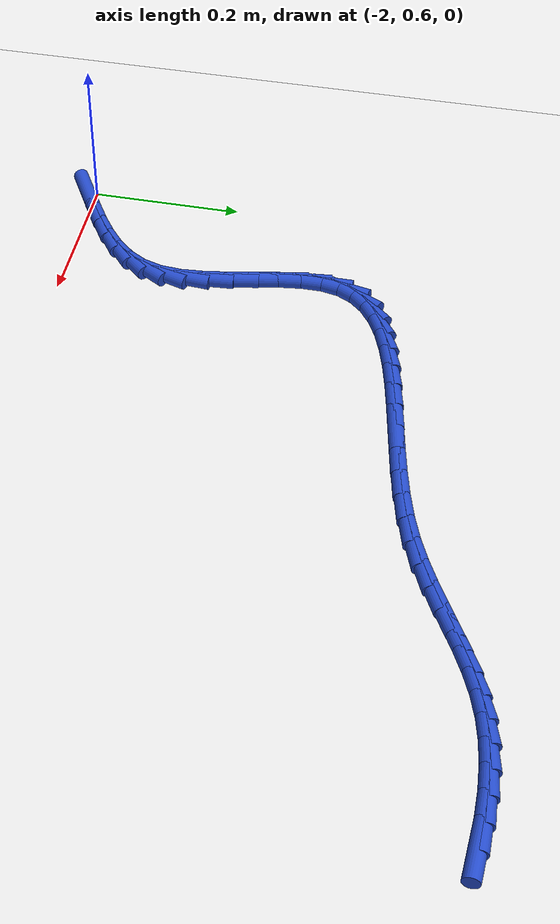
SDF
<sdf version="1.6">
 <world name="default">
  <model name="ground_plane">
   <static>1</static>
   <link name="link">
    <collision name="collision">
     <geometry><plane><normal>0 0 1</normal><size>100 100</size></plane></geometry>
     <surface><friction><ode><mu>100</mu><mu2>50</mu2></ode></friction></surface>
    </collision>
    <visual name="visual">
     <cast_shadows>0</cast_shadows>
     <geometry><plane><normal>0 0 1</normal><size>100 100</size></plane></geometry>
     <material>
      <script><uri>file://media/materials/scripts/gazebo.material</uri><name>Gazebo/WhiteGlow</name></script>
     </material>
    </visual>
   </link>
  </model>
  <model name="line">
   <link name="link_60">
    <pose>-1.0800397950883858 1.2339062582104587 0.01 0 1.57 -0.0664365618793317</pose>
    <collision name="collision">
     <geometry><cylinder><radius>0.01</radius><length>0.08</length></cylinder></geometry>
    </collision>
    <visual name="visual">
     <material>
      <script><name>Gazebo/Blue</name><uri>file://media/materials/scripts/gazebo.material</uri></script>
     </material>
     <geometry><cylinder><radius>0.01</radius><length>0.08</length></cylinder></geometry>
    </visual>
   </link>
   <link name="link_61">
    <pose>-1.1112550492592892 1.2359831489469961 0.01 0 1.57 -0.005425694043413353</pose>
    <collision name="collision">
     <geometry><cylinder><radius>0.01</radius><length>0.08</length></cylinder></geometry>
    </collision>
    <visual name="visual">
     <material>
      <script><name>Gazebo/Blue</name><uri>file://media/materials/scripts/gazebo.material</uri></script>
     </material>
     <geometry><cylinder><radius>0.01</radius><length>0.08</length></cylinder></geometry>
    </visual>
   </link>
   <link name="link_62">
    <pose>-1.1423454659710004 1.2361518376910545 0.01 0 1.57 0.062025596062213036</pose>
    <collision name="collision">
     <geometry><cylinder><radius>0.01</radius><length>0.08</length></cylinder></geometry>
    </collision>
    <visual name="visual">
     <material>
      <script><name>Gazebo/Blue</name><uri>file://media/materials/scripts/gazebo.material</uri></script>
     </material>
     <geometry><cylinder><radius>0.01</radius><length>0.08</length></cylinder></geometry>
    </visual>
   </link>
   <link name="link_63">
    <pose>-1.1730264873742393 1.2342463848872556 0.01 0 1.57 0.1373733376233657</pose>
    <collision name="collision">
     <geometry><cylinder><radius>0.01</radius><length>0.08</length></cylinder></geometry>
    </collision>
    <visual name="visual">
     <material>
      <script><name>Gazebo/Blue</name><uri>file://media/materials/scripts/gazebo.material</uri></script>
     </material>
     <geometry><cylinder><radius>0.01</radius><length>0.08</length></cylinder></geometry>
    </visual>
   </link>
   <link name="link_64">
    <pose>-1.2030135556197248 1.23010085098022 0.01 0 1.57 0.2221224159318546</pose>
    <collision name="collision">
     <geometry><cylinder><radius>0.01</radius><length>0.08</length></cylinder></geometry>
    </collision>
    <visual name="visual">
     <material>
      <script><name>Gazebo/Blue</name><uri>file://media/materials/scripts/gazebo.material</uri></script>
     </material>
     <geometry><cylinder><radius>0.01</radius><length>0.08</length></cylinder></geometry>
    </visual>
   </link>
   <link name="link_65">
    <pose>-1.2320221128581752 1.2235492964145684 0.01 0 1.57 0.3161550049958404</pose>
    <collision name="collision">
     <geometry><cylinder><radius>0.01</radius><length>0.08</length></cylinder></geometry>
    </collision>
    <visual name="visual">
     <material>
      <script><name>Gazebo/Blue</name><uri>file://media/materials/scripts/gazebo.material</uri></script>
     </material>
     <geometry><cylinder><radius>0.01</radius><length>0.08</length></cylinder></geometry>
    </visual>
   </link>
   <link name="link_66">
    <pose>-1.2598034100361941 1.2144612682788094 0.01 0 1.57 0.4012670931757674</pose>
    <collision name="collision">
     <geometry><cylinder><radius>0.01</radius><length>0.08</length></cylinder></geometry>
    </collision>
    <visual name="visual">
     <material>
      <script><name>Gazebo/Blue</name><uri>file://media/materials/scripts/gazebo.material</uri></script>
     </material>
     <geometry><cylinder><radius>0.01</radius><length>0.08</length></cylinder></geometry>
    </visual>
   </link>
   <link name="link_67">
    <pose>-1.286528362119507 1.203122202194736 0.01 0 1.57 0.46299806849678915</pose>
    <collision name="collision">
     <geometry><cylinder><radius>0.01</radius><length>0.08</length></cylinder></geometry>
    </collision>
    <visual name="visual">
     <material>
      <script><name>Gazebo/Blue</name><uri>file://media/materials/scripts/gazebo.material</uri></script>
     </material>
     <geometry><cylinder><radius>0.01</radius><length>0.08</length></cylinder></geometry>
    </visual>
   </link>
   <link name="link_68">
    <pose>-1.3126402519467884 1.1900874513134838 0.01 0 1.57 0.49987390040384344</pose>
    <collision name="collision">
     <geometry><cylinder><radius>0.01</radius><length>0.08</length></cylinder></geometry>
    </collision>
    <visual name="visual">
     <material>
      <script><name>Gazebo/Blue</name><uri>file://media/materials/scripts/gazebo.material</uri></script>
     </material>
     <geometry><cylinder><radius>0.01</radius><length>0.08</length></cylinder></geometry>
    </visual>
   </link>
   <link name="link_69">
    <pose>-1.3385869750202228 1.1759169399521057 0.01 0 1.57 0.5121658748547565</pose>
    <collision name="collision">
     <geometry><cylinder><radius>0.01</radius><length>0.08</length></cylinder></geometry>
    </collision>
    <visual name="visual">
     <material>
      <script><name>Gazebo/Blue</name><uri>file://media/materials/scripts/gazebo.material</uri></script>
     </material>
     <geometry><cylinder><radius>0.01</radius><length>0.08</length></cylinder></geometry>
    </visual>
   </link>
   <link name="link_70">
    <pose>-1.3648164268419931 1.161170592427654 0.01 0 1.57 0.5009679637860345</pose>
    <collision name="collision">
     <geometry><cylinder><radius>0.01</radius><length>0.08</length></cylinder></geometry>
    </collision>
    <visual name="visual">
     <material>
      <script><name>Gazebo/Blue</name><uri>file://media/materials/scripts/gazebo.material</uri></script>
     </material>
     <geometry><cylinder><radius>0.01</radius><length>0.08</length></cylinder></geometry>
    </visual>
   </link>
   <link name="link_71">
    <pose>-1.3917765029142832 1.146408333057182 0.01 0 1.57 0.4678733604370564</pose>
    <collision name="collision">
     <geometry><cylinder><radius>0.01</radius><length>0.08</length></cylinder></geometry>
    </collision>
    <visual name="visual">
     <material>
      <script><name>Gazebo/Blue</name><uri>file://media/materials/scripts/gazebo.material</uri></script>
     </material>
     <geometry><cylinder><radius>0.01</radius><length>0.08</length></cylinder></geometry>
    </visual>
   </link>
   <link name="link_72">
    <pose>-1.4199150987392763 1.1321900861577419 0.01 0 1.57 0.4150051180495077</pose>
    <collision name="collision">
     <geometry><cylinder><radius>0.01</radius><length>0.08</length></cylinder></geometry>
    </collision>
    <visual name="visual">
     <material>
      <script><name>Gazebo/Blue</name><uri>file://media/materials/scripts/gazebo.material</uri></script>
     </material>
     <geometry><cylinder><radius>0.01</radius><length>0.08</length></cylinder></geometry>
    </visual>
   </link>
   <link name="link_73">
    <pose>-1.4496801098191556 1.1190757760463867 0.01 0 1.57 0.3459419176136435</pose>
    <collision name="collision">
     <geometry><cylinder><radius>0.01</radius><length>0.08</length></cylinder></geometry>
    </collision>
    <visual name="visual">
     <material>
      <script><name>Gazebo/Blue</name><uri>file://media/materials/scripts/gazebo.material</uri></script>
     </material>
     <geometry><cylinder><radius>0.01</radius><length>0.08</length></cylinder></geometry>
    </visual>
   </link>
   <link name="link_74">
    <pose>-1.48149953530145 1.1076068947423887 0.01 0 1.57 0.28044574800079436</pose>
    <collision name="collision">
     <geometry><cylinder><radius>0.01</radius><length>0.08</length></cylinder></geometry>
    </collision>
    <visual name="visual">
     <material>
      <script><name>Gazebo/Blue</name><uri>file://media/materials/scripts/gazebo.material</uri></script>
     </material>
     <geometry><cylinder><radius>0.01</radius><length>0.08</length></cylinder></geometry>
    </visual>
   </link>
   <link name="link_75">
    <pose>-1.515308775446236 1.097868582861101 0.01 0 1.57 0.23405546858715767</pose>
    <collision name="collision">
     <geometry><cylinder><radius>0.01</radius><length>0.08</length></cylinder></geometry>
    </collision>
    <visual name="visual">
     <material>
      <script><name>Gazebo/Blue</name><uri>file://media/materials/scripts/gazebo.material</uri></script>
     </material>
     <geometry><cylinder><radius>0.01</radius><length>0.08</length></cylinder></geometry>
    </visual>
   </link>
   <link name="link_76">
    <pose>-1.550530375425055 1.0894708639487523 0.01 0 1.57 0.2043979444478641</pose>
    <collision name="collision">
     <geometry><cylinder><radius>0.01</radius><length>0.08</length></cylinder></geometry>
    </collision>
    <visual name="visual">
     <material>
      <script><name>Gazebo/Blue</name><uri>file://media/materials/scripts/gazebo.material</uri></script>
     </material>
     <geometry><cylinder><radius>0.01</radius><length>0.08</length></cylinder></geometry>
    </visual>
   </link>
   <link name="link_77">
    <pose>-1.5865629307520834 1.0820015742100233 0.01 0 1.57 0.18954624996845568</pose>
    <collision name="collision">
     <geometry><cylinder><radius>0.01</radius><length>0.08</length></cylinder></geometry>
    </collision>
    <visual name="visual">
     <material>
      <script><name>Gazebo/Blue</name><uri>file://media/materials/scripts/gazebo.material</uri></script>
     </material>
     <geometry><cylinder><radius>0.01</radius><length>0.08</length></cylinder></geometry>
    </visual>
   </link>
   <link name="link_78">
    <pose>-1.6228050369414995 1.075048549849596 0.01 0 1.57 0.18876795513011335</pose>
    <collision name="collision">
     <geometry><cylinder><radius>0.01</radius><length>0.08</length></cylinder></geometry>
    </collision>
    <visual name="visual">
     <material>
      <script><name>Gazebo/Blue</name><uri>file://media/materials/scripts/gazebo.material</uri></script>
     </material>
     <geometry><cylinder><radius>0.01</radius><length>0.08</length></cylinder></geometry>
    </visual>
   </link>
   <link name="link_79">
    <pose>-1.6586552895074813 1.068199627072153 0.01 0 1.57 0.20250971545210233</pose>
    <collision name="collision">
     <geometry><cylinder><radius>0.01</radius><length>0.08</length></cylinder></geometry>
    </collision>
    <visual name="visual">
     <material>
      <script><name>Gazebo/Blue</name><uri>file://media/materials/scripts/gazebo.material</uri></script>
     </material>
     <geometry><cylinder><radius>0.01</radius><length>0.08</length></cylinder></geometry>
    </visual>
   </link>
   <link name="link_80">
    <pose>-1.6935122839642058 1.0610426420823758 0.01 0 1.57 0.23253673835171096</pose>
    <collision name="collision">
     <geometry><cylinder><radius>0.01</radius><length>0.08</length></cylinder></geometry>
    </collision>
    <visual name="visual">
     <material>
      <script><name>Gazebo/Blue</name><uri>file://media/materials/scripts/gazebo.material</uri></script>
     </material>
     <geometry><cylinder><radius>0.01</radius><length>0.08</length></cylinder></geometry>
    </visual>
   </link>
   <link name="link_81">
    <pose>-1.7267746158258503 1.0531654310849454 0.01 0 1.57 0.2822688241438516</pose>
    <collision name="collision">
     <geometry><cylinder><radius>0.01</radius><length>0.08</length></cylinder></geometry>
    </collision>
    <visual name="visual">
     <material>
      <script><name>Gazebo/Blue</name><uri>file://media/materials/scripts/gazebo.material</uri></script>
     </material>
     <geometry><cylinder><radius>0.01</radius><length>0.08</length></cylinder></geometry>
    </visual>
   </link>
   <link name="link_82">
    <pose>-1.7578408806065937 1.0441558302845448 0.01 0 1.57 0.35732332483588025</pose>
    <collision name="collision">
     <geometry><cylinder><radius>0.01</radius><length>0.08</length></cylinder></geometry>
    </collision>
    <visual name="visual">
     <material>
      <script><name>Gazebo/Blue</name><uri>file://media/materials/scripts/gazebo.material</uri></script>
     </material>
     <geometry><cylinder><radius>0.01</radius><length>0.08</length></cylinder></geometry>
    </visual>
   </link>
   <link name="link_83">
    <pose>-1.7861096738206117 1.0336016758858548 0.01 0 1.57 0.4660865551839481</pose>
    <collision name="collision">
     <geometry><cylinder><radius>0.01</radius><length>0.08</length></cylinder></geometry>
    </collision>
    <visual name="visual">
     <material>
      <script><name>Gazebo/Blue</name><uri>file://media/materials/scripts/gazebo.material</uri></script>
     </material>
     <geometry><cylinder><radius>0.01</radius><length>0.08</length></cylinder></geometry>
    </visual>
   </link>
   <link name="link_84">
    <pose>-1.8109795909820836 1.0210908040935578 0.01 0 1.57 0.6193881523407391</pose>
    <collision name="collision">
     <geometry><cylinder><radius>0.01</radius><length>0.08</length></cylinder></geometry>
    </collision>
    <visual name="visual">
     <material>
      <script><name>Gazebo/Blue</name><uri>file://media/materials/scripts/gazebo.material</uri></script>
     </material>
     <geometry><cylinder><radius>0.01</radius><length>0.08</length></cylinder></geometry>
    </visual>
   </link>
   <link name="link_85">
    <pose>-1.8318492276051863 1.0062110511123357 0.01 0 1.57 0.8264272237578307</pose>
    <collision name="collision">
     <geometry><cylinder><radius>0.01</radius><length>0.08</length></cylinder></geometry>
    </collision>
    <visual name="visual">
     <material>
      <script><name>Gazebo/Blue</name><uri>file://media/materials/scripts/gazebo.material</uri></script>
     </material>
     <geometry><cylinder><radius>0.01</radius><length>0.08</length></cylinder></geometry>
    </visual>
   </link>
   <link name="link_86">
    <pose>-1.8481171792040971 0.9885502531468697 0.01 0 1.57 1.0829796913932284</pose>
    <collision name="collision">
     <geometry><cylinder><radius>0.01</radius><length>0.08</length></cylinder></geometry>
    </collision>
    <visual name="visual">
     <material>
      <script><name>Gazebo/Blue</name><uri>file://media/materials/scripts/gazebo.material</uri></script>
     </material>
     <geometry><cylinder><radius>0.01</radius><length>0.08</length></cylinder></geometry>
    </visual>
   </link>
   <link name="link_87">
    <pose>-1.859182041292994 0.9676962464018419 0.01 0 1.57 1.3576406347853465</pose>
    <collision name="collision">
     <geometry><cylinder><radius>0.01</radius><length>0.08</length></cylinder></geometry>
    </collision>
    <visual name="visual">
     <material>
      <script><name>Gazebo/Blue</name><uri>file://media/materials/scripts/gazebo.material</uri></script>
     </material>
     <geometry><cylinder><radius>0.01</radius><length>0.08</length></cylinder></geometry>
    </visual>
   </link>
   <link name="link_88">
    <pose>-1.8644722845696735 0.9432545900085475 0.01 0 1.57 -1.5681867805016165</pose>
    <collision name="collision">
     <geometry><cylinder><radius>0.01</radius><length>0.08</length></cylinder></geometry>
    </collision>
    <visual name="visual">
     <material>
      <script><name>Gazebo/Blue</name><uri>file://media/materials/scripts/gazebo.material</uri></script>
     </material>
     <geometry><cylinder><radius>0.01</radius><length>0.08</length></cylinder></geometry>
    </visual>
   </link>
   <link name="link_89">
    <pose>-1.8643996334644077 0.915414141061054 0.01 0 1.57 -1.444903750423835</pose>
    <collision name="collision">
     <geometry><cylinder><radius>0.01</radius><length>0.08</length></cylinder></geometry>
    </collision>
    <visual name="visual">
     <material>
      <script><name>Gazebo/Blue</name><uri>file://media/materials/scripts/gazebo.material</uri></script>
     </material>
     <geometry><cylinder><radius>0.01</radius><length>0.08</length></cylinder></geometry>
    </visual>
   </link>
   <link name="link_90">
    <pose>-1.8605586454097436 0.8850654515036408 0.01 0 1.57 -1.3866995117534495</pose>
    <collision name="collision">
     <geometry><cylinder><radius>0.01</radius><length>0.08</length></cylinder></geometry>
    </collision>
    <visual name="visual">
     <material>
      <script><name>Gazebo/Blue</name><uri>file://media/materials/scripts/gazebo.material</uri></script>
     </material>
     <geometry><cylinder><radius>0.01</radius><length>0.08</length></cylinder></geometry>
    </visual>
   </link>
   <link name="link_91">
    <pose>-1.8546140966867697 0.8531407293760073 0.01 0 1.57 -1.3772528796642394</pose>
    <collision name="collision">
     <geometry><cylinder><radius>0.01</radius><length>0.08</length></cylinder></geometry>
    </collision>
    <visual name="visual">
     <material>
      <script><name>Gazebo/Blue</name><uri>file://media/materials/scripts/gazebo.material</uri></script>
     </material>
     <geometry><cylinder><radius>0.01</radius><length>0.08</length></cylinder></geometry>
    </visual>
   </link>
   <link name="link_92">
    <pose>-1.8482307635765753 0.8205721827178533 0.01 0 1.57 -1.4123671576766212</pose>
    <collision name="collision">
     <geometry><cylinder><radius>0.01</radius><length>0.08</length></cylinder></geometry>
    </collision>
    <visual name="visual">
     <material>
      <script><name>Gazebo/Blue</name><uri>file://media/materials/scripts/gazebo.material</uri></script>
     </material>
     <geometry><cylinder><radius>0.01</radius><length>0.08</length></cylinder></geometry>
    </visual>
   </link>
   <link name="link_93">
    <pose>-1.8430734223602487 0.7882920195688786 0.01 0 1.57 -1.4979504278680298</pose>
    <collision name="collision">
     <geometry><cylinder><radius>0.01</radius><length>0.08</length></cylinder></geometry>
    </collision>
    <visual name="visual">
     <material>
      <script><name>Gazebo/Blue</name><uri>file://media/materials/scripts/gazebo.material</uri></script>
     </material>
     <geometry><cylinder><radius>0.01</radius><length>0.08</length></cylinder></geometry>
    </visual>
   </link>
   <link name="link_94">
    <pose>-1.8408068493188792 0.757232447968783 0.01 0 1.57 1.4917765999496022</pose>
    <collision name="collision">
     <geometry><cylinder><radius>0.01</radius><length>0.08</length></cylinder></geometry>
    </collision>
    <visual name="visual">
     <material>
      <script><name>Gazebo/Blue</name><uri>file://media/materials/scripts/gazebo.material</uri></script>
     </material>
     <geometry><cylinder><radius>0.01</radius><length>0.08</length></cylinder></geometry>
    </visual>
   </link>
   <link name="link_95">
    <pose>-1.8430958207335546 0.7283256759572656 0.01 0 1.57 1.262140762932919</pose>
    <collision name="collision">
     <geometry><cylinder><radius>0.01</radius><length>0.08</length></cylinder></geometry>
    </collision>
    <visual name="visual">
     <material>
      <script><name>Gazebo/Blue</name><uri>file://media/materials/scripts/gazebo.material</uri></script>
     </material>
     <geometry><cylinder><radius>0.01</radius><length>0.08</length></cylinder></geometry>
    </visual>
   </link>
   <link name="link_96">
    <pose>-1.8513705018904636 0.7023736880328515 0.01 0 1.57 1.0245258376319855</pose>
    <collision name="collision">
     <geometry><cylinder><radius>0.01</radius><length>0.08</length></cylinder></geometry>
    </collision>
    <visual name="visual">
     <material>
      <script><name>Gazebo/Blue</name><uri>file://media/materials/scripts/gazebo.material</uri></script>
     </material>
     <geometry><cylinder><radius>0.01</radius><length>0.08</length></cylinder></geometry>
    </visual>
   </link>
   <link name="link_97">
    <pose>-1.8654190127287424 0.6792670324676728 0.01 0 1.57 0.8320299157422221</pose>
    <collision name="collision">
     <geometry><cylinder><radius>0.01</radius><length>0.08</length></cylinder></geometry>
    </collision>
    <visual name="visual">
     <material>
      <script><name>Gazebo/Blue</name><uri>file://media/materials/scripts/gazebo.material</uri></script>
     </material>
     <geometry><cylinder><radius>0.01</radius><length>0.08</length></cylinder></geometry>
    </visual>
   </link>
   <link name="link_98">
    <pose>-1.8843279782514444 0.6585068846712141 0.01 0 1.57 0.6913566276712136</pose>
    <collision name="collision">
     <geometry><cylinder><radius>0.01</radius><length>0.08</length></cylinder></geometry>
    </collision>
    <visual name="visual">
     <material>
      <script><name>Gazebo/Blue</name><uri>file://media/materials/scripts/gazebo.material</uri></script>
     </material>
     <geometry><cylinder><radius>0.01</radius><length>0.08</length></cylinder></geometry>
    </visual>
   </link>
   <link name="link_99">
    <pose>-1.9071813896208427 0.6395929581092292 0.01 0 1.57 0.5963395808274556</pose>
    <collision name="collision">
     <geometry><cylinder><radius>0.01</radius><length>0.08</length></cylinder></geometry>
    </collision>
    <visual name="visual">
     <material>
      <script><name>Gazebo/Blue</name><uri>file://media/materials/scripts/gazebo.material</uri></script>
     </material>
     <geometry><cylinder><radius>0.01</radius><length>0.08</length></cylinder></geometry>
    </visual>
   </link>
   <link name="link_100">
    <pose>-1.9330632379992099 0.6220249662474714 0.01 0 1.57 0.5384677079357206</pose>
    <collision name="collision">
     <geometry><cylinder><radius>0.01</radius><length>0.08</length></cylinder></geometry>
    </collision>
    <visual name="visual">
     <material>
      <script><name>Gazebo/Blue</name><uri>file://media/materials/scripts/gazebo.material</uri></script>
     </material>
     <geometry><cylinder><radius>0.01</radius><length>0.08</length></cylinder></geometry>
    </visual>
   </link>
   <link name="link_101">
    <pose>-1.9610575145488176 0.6053026225516939 0.01 0 1.57 0.5112753642001465</pose>
    <collision name="collision">
     <geometry><cylinder><radius>0.01</radius><length>0.08</length></cylinder></geometry>
    </collision>
    <visual name="visual">
     <material>
      <script><name>Gazebo/Blue</name><uri>file://media/materials/scripts/gazebo.material</uri></script>
     </material>
     <geometry><cylinder><radius>0.01</radius><length>0.08</length></cylinder></geometry>
    </visual>
   </link>
   <link name="link_102">
    <pose>-1.9902482104319392 0.58892564048765 0.01 0 1.57 0.5112135512822906</pose>
    <collision name="collision">
     <geometry><cylinder><radius>0.01</radius><length>0.08</length></cylinder></geometry>
    </collision>
    <visual name="visual">
     <material>
      <script><name>Gazebo/Blue</name><uri>file://media/materials/scripts/gazebo.material</uri></script>
     </material>
     <geometry><cylinder><radius>0.01</radius><length>0.08</length></cylinder></geometry>
    </visual>
   </link>
  </model>
 </world>
</sdf>
